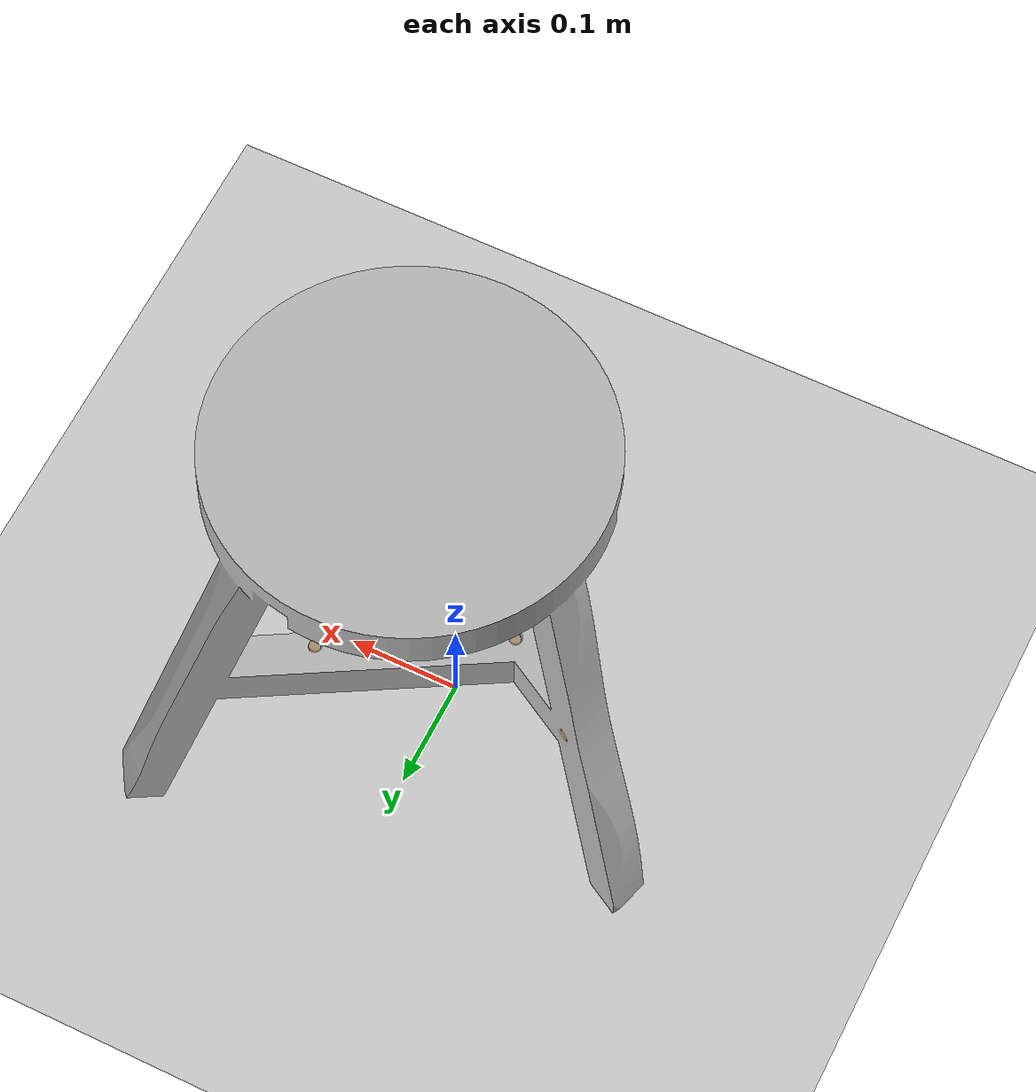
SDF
<?xml version="1.0"?>
<sdf version="1.4">
  <world name="default">
    <include>
      <uri>model://ground_plane</uri>
    </include>
    <include>
      <uri>model://sun</uri>
    </include>
    <model name="my_mesh">
      <pose>0 0 0  0 0 0</pose>
      <static>true</static>
      <link name="body">
        <visual name="visual">
          <geometry>
            <mesh><uri>file://Offcut Natural StoolDAE.DAE</uri></mesh>
          </geometry>
        </visual>
      </link>
    </model>
  </world>
</sdf>
